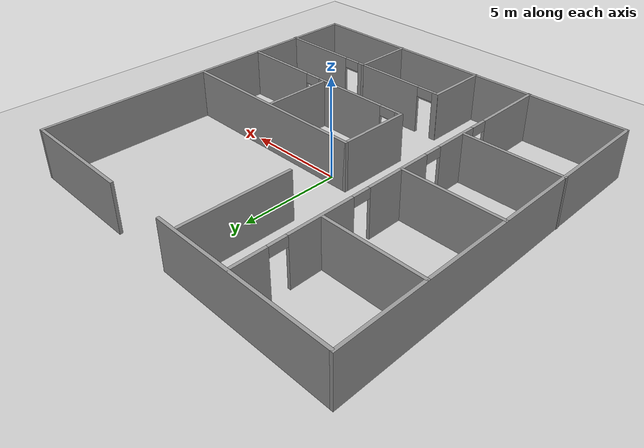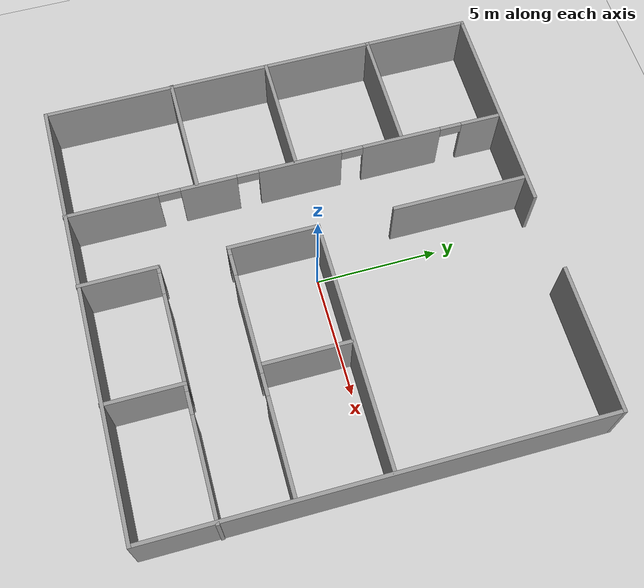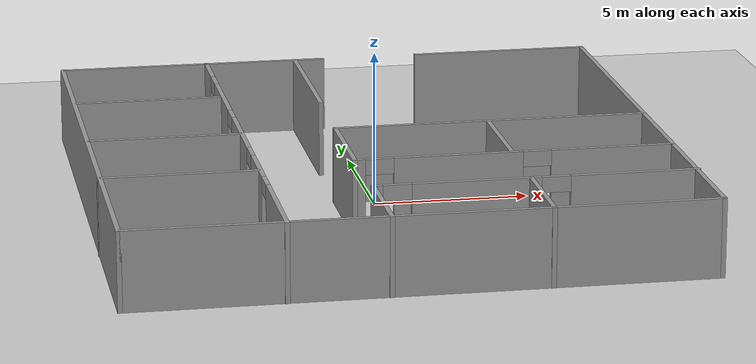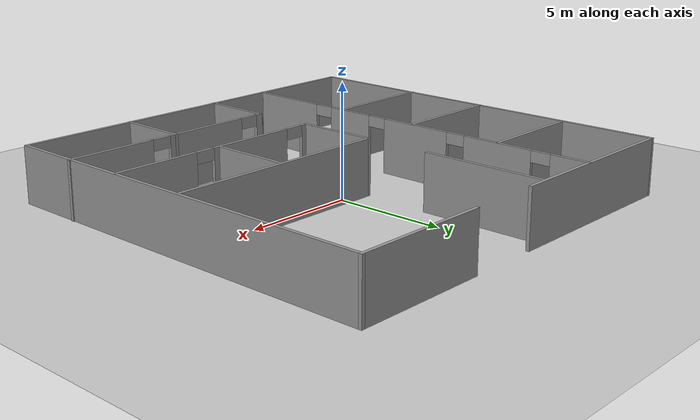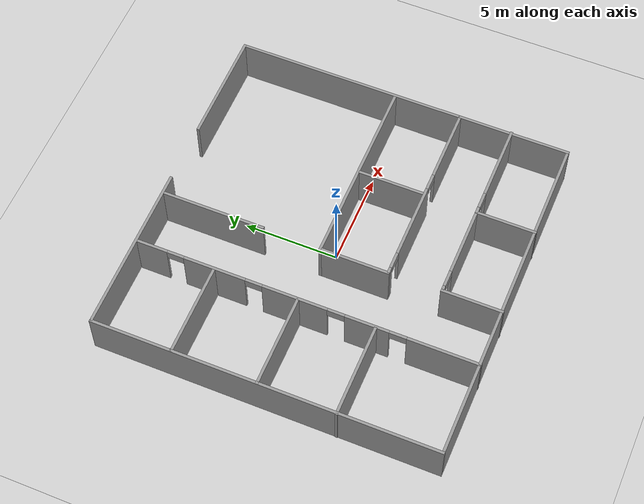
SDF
<sdf version="1.7">
 <world name="default">
  <light name="sun" type="directional">
   <pose>0 0 10 0 -0 0</pose>
   <diffuse>0.8 0.8 0.8 1</diffuse>
   <specular>0.2 0.2 0.2 1</specular>
   <attenuation>
    <range>1000</range>
    <constant>0.9</constant>
    <linear>0.01</linear>
    <quadratic>0.001</quadratic>
   </attenuation>
   <direction>-0.5 0.1 -0.9</direction>
   <spot><inner_angle>0</inner_angle><outer_angle>0</outer_angle><falloff>0</falloff></spot>
  </light>
  <model name="ground_plane">
   <static>1</static>
   <link name="link">
    <collision name="collision">
     <geometry><plane><normal>0 0 1</normal><size>100 100</size></plane></geometry>
     <surface>
      <contact><collide_bitmask>65535</collide_bitmask></contact>
      <friction><ode><mu>100</mu><mu2>50</mu2></ode></friction>
     </surface>
    </collision>
    <visual name="visual">
     <cast_shadows>0</cast_shadows>
     <geometry><plane><normal>0 0 1</normal><size>100 100</size></plane></geometry>
     <material>
      <script><uri>file://media/materials/scripts/gazebo.material</uri><name>Gazebo/Grey</name></script>
     </material>
    </visual>
   </link>
  </model>
  <gravity>0 0 -9.8</gravity>
  <magnetic_field>6e-06 2.3e-05 -4.2e-05</magnetic_field>
  <atmosphere type="adiabatic"/>
  <physics type="ode">
   <max_step_size>0.001</max_step_size>
   <real_time_factor>1</real_time_factor>
   <real_time_update_rate>1000</real_time_update_rate>
  </physics>
  <scene><ambient>0.4 0.4 0.4 1</ambient><background>0.7 0.7 0.7 1</background><shadows>1</shadows></scene>
  <spherical_coordinates>
   <surface_model>EARTH_WGS84</surface_model>
   <latitude_deg>0</latitude_deg>
   <longitude_deg>0</longitude_deg>
   <elevation>0</elevation>
   <heading_deg>0</heading_deg>
  </spherical_coordinates>
  <model name="Clinic_Plan">
   <pose>-0.0914 -0.080939 0 0 -0 0</pose>
   <link name="Wall_11">
    <pose>-4.13749 -0.011198 0 0 -0 -1.5708</pose>
    <visual name="Wall_11_Visual_0">
     <pose>-8.24062 0 1.25 0 -0 0</pose>
     <geometry><box><size>1.76876 0.15 2.5</size></box></geometry>
     <material>
      <script><uri>file://media/materials/scripts/gazebo.material</uri><name>Gazebo/Grey</name></script>
      <ambient>1 1 1 1</ambient>
     </material>
     <meta><layer>0</layer></meta>
    </visual>
    <collision name="Wall_11_Collision_0">
     <geometry><box><size>1.76876 0.15 2.5</size></box></geometry>
     <pose>-8.24062 0 1.25 0 -0 0</pose>
    </collision>
    <visual name="Wall_11_Visual_1">
     <pose>-4.80135 0 1.25 0 -0 0</pose>
     <geometry><box><size>3.30977 0.15 2.5</size></box></geometry>
     <material>
      <script><uri>file://media/materials/scripts/gazebo.material</uri><name>Gazebo/Grey</name></script>
      <ambient>1 1 1 1</ambient>
     </material>
     <meta><layer>0</layer></meta>
    </visual>
    <collision name="Wall_11_Collision_1">
     <geometry><box><size>3.30977 0.15 2.5</size></box></geometry>
     <pose>-4.80135 0 1.25 0 -0 0</pose>
    </collision>
    <visual name="Wall_11_Visual_2">
     <pose>-0.522188 0 1.25 0 -0 0</pose>
     <geometry><box><size>3.44855 0.15 2.5</size></box></geometry>
     <material>
      <script><uri>file://media/materials/scripts/gazebo.material</uri><name>Gazebo/Grey</name></script>
      <ambient>1 1 1 1</ambient>
     </material>
     <meta><layer>0</layer></meta>
    </visual>
    <collision name="Wall_11_Collision_2">
     <geometry><box><size>3.44855 0.15 2.5</size></box></geometry>
     <pose>-0.522188 0 1.25 0 -0 0</pose>
    </collision>
    <visual name="Wall_11_Visual_3">
     <pose>3.25967 0 1.25 0 -0 0</pose>
     <geometry><box><size>2.31515 0.15 2.5</size></box></geometry>
     <material>
      <script><uri>file://media/materials/scripts/gazebo.material</uri><name>Gazebo/Grey</name></script>
      <ambient>1 1 1 1</ambient>
     </material>
     <meta><layer>0</layer></meta>
    </visual>
    <collision name="Wall_11_Collision_3">
     <geometry><box><size>2.31515 0.15 2.5</size></box></geometry>
     <pose>3.25967 0 1.25 0 -0 0</pose>
    </collision>
    <visual name="Wall_11_Visual_4">
     <pose>7.22112 0 1.25 0 -0 0</pose>
     <geometry><box><size>3.80776 0.15 2.5</size></box></geometry>
     <material>
      <script><uri>file://media/materials/scripts/gazebo.material</uri><name>Gazebo/Grey</name></script>
      <ambient>1 1 1 1</ambient>
     </material>
     <meta><layer>0</layer></meta>
    </visual>
    <collision name="Wall_11_Collision_4">
     <geometry><box><size>3.80776 0.15 2.5</size></box></geometry>
     <pose>7.22112 0 1.25 0 -0 0</pose>
    </collision>
    <visual name="Wall_11_Visual_5">
     <pose>-6.90624 0 2.25 0 -0 0</pose>
     <geometry><box><size>0.9 0.15 0.5</size></box></geometry>
     <material>
      <script><uri>file://media/materials/scripts/gazebo.material</uri><name>Gazebo/Grey</name></script>
      <ambient>1 1 1 1</ambient>
     </material>
     <meta><layer>0</layer></meta>
    </visual>
    <collision name="Wall_11_Collision_5">
     <geometry><box><size>0.9 0.15 0.5</size></box></geometry>
     <pose>-6.90624 0 2.25 0 -0 0</pose>
    </collision>
    <visual name="Wall_11_Visual_6">
     <pose>-2.69646 0 2.25 0 -0 0</pose>
     <geometry><box><size>0.9 0.15 0.5</size></box></geometry>
     <material>
      <script><uri>file://media/materials/scripts/gazebo.material</uri><name>Gazebo/Grey</name></script>
      <ambient>1 1 1 1</ambient>
     </material>
     <meta><layer>0</layer></meta>
    </visual>
    <collision name="Wall_11_Collision_6">
     <geometry><box><size>0.9 0.15 0.5</size></box></geometry>
     <pose>-2.69646 0 2.25 0 -0 0</pose>
    </collision>
    <visual name="Wall_11_Visual_7">
     <pose>1.65209 0 2.25 0 -0 0</pose>
     <geometry><box><size>0.9 0.15 0.5</size></box></geometry>
     <material>
      <script><uri>file://media/materials/scripts/gazebo.material</uri><name>Gazebo/Grey</name></script>
      <ambient>1 1 1 1</ambient>
     </material>
     <meta><layer>0</layer></meta>
    </visual>
    <collision name="Wall_11_Collision_7">
     <geometry><box><size>0.9 0.15 0.5</size></box></geometry>
     <pose>1.65209 0 2.25 0 -0 0</pose>
    </collision>
    <visual name="Wall_11_Visual_8">
     <pose>4.86724 0 2.25 0 -0 0</pose>
     <geometry><box><size>0.9 0.15 0.5</size></box></geometry>
     <material>
      <script><uri>file://media/materials/scripts/gazebo.material</uri><name>Gazebo/Grey</name></script>
      <ambient>1 1 1 1</ambient>
     </material>
     <meta><layer>0</layer></meta>
    </visual>
    <collision name="Wall_11_Collision_8">
     <geometry><box><size>0.9 0.15 0.5</size></box></geometry>
     <pose>4.86724 0 2.25 0 -0 0</pose>
    </collision>
   </link>
   <link name="Wall_15">
    <collision name="Wall_15_Collision">
     <geometry><box><size>5 0.15 2.5</size></box></geometry>
     <pose>0 0 1.25 0 -0 0</pose>
    </collision>
    <visual name="Wall_15_Visual">
     <pose>0 0 1.25 0 -0 0</pose>
     <geometry><box><size>5 0.15 2.5</size></box></geometry>
     <material>
      <script><uri>file://media/materials/scripts/gazebo.material</uri><name>Gazebo/Grey</name></script>
      <ambient>1 1 1 1</ambient>
     </material>
     <meta><layer>0</layer></meta>
    </visual>
    <pose>-6.62954 4.79703 0 0 -0 0</pose>
   </link>
   <link name="Wall_17">
    <collision name="Wall_17_Collision">
     <geometry><box><size>5 0.15 2.5</size></box></geometry>
     <pose>0 0 1.25 0 -0 0</pose>
    </collision>
    <visual name="Wall_17_Visual">
     <pose>0 0 1.25 0 -0 0</pose>
     <geometry><box><size>5 0.15 2.5</size></box></geometry>
     <material>
      <script><uri>file://media/materials/scripts/gazebo.material</uri><name>Gazebo/Grey</name></script>
      <ambient>1 1 1 1</ambient>
     </material>
     <meta><layer>0</layer></meta>
    </visual>
    <pose>-6.62954 0.330853 0 0 -0 0</pose>
   </link>
   <link name="Wall_19">
    <collision name="Wall_19_Collision">
     <geometry><box><size>5 0.15 2.5</size></box></geometry>
     <pose>0 0 1.25 0 -0 0</pose>
    </collision>
    <visual name="Wall_19_Visual">
     <pose>0 0 1.25 0 -0 0</pose>
     <geometry><box><size>5 0.15 2.5</size></box></geometry>
     <material>
      <script><uri>file://media/materials/scripts/gazebo.material</uri><name>Gazebo/Grey</name></script>
      <ambient>1 1 1 1</ambient>
     </material>
     <meta><layer>0</layer></meta>
    </visual>
    <pose>-6.66013 -3.73765 0 0 -0 0</pose>
   </link>
   <link name="Wall_22">
    <collision name="Wall_22_Collision">
     <geometry><box><size>3.25 0.15 2.5</size></box></geometry>
     <pose>0 0 1.25 0 -0 0</pose>
    </collision>
    <visual name="Wall_22_Visual">
     <pose>0 0 1.25 0 -0 0</pose>
     <geometry><box><size>3.25 0.15 2.5</size></box></geometry>
     <material>
      <script><uri>file://media/materials/scripts/gazebo.material</uri><name>Gazebo/Grey</name></script>
      <ambient>1 1 1 1</ambient>
     </material>
     <meta><layer>0</layer></meta>
    </visual>
    <pose>-1.0264 -7.51474 0 0 -0 1.5708</pose>
   </link>
   <link name="Wall_3">
    <collision name="Wall_3_Collision">
     <geometry><box><size>18.25 0.15 2.5</size></box></geometry>
     <pose>0 0 1.25 0 -0 0</pose>
    </collision>
    <visual name="Wall_3_Visual">
     <pose>0 0 1.25 0 -0 0</pose>
     <geometry><box><size>18.25 0.15 2.5</size></box></geometry>
     <material>
      <script><uri>file://media/materials/scripts/gazebo.material</uri><name>Gazebo/Grey</name></script>
      <ambient>1 1 1 1</ambient>
     </material>
     <meta><layer>0</layer></meta>
    </visual>
    <pose>-9.0597 0.014737 0 0 -0 -1.5708</pose>
   </link>
   <link name="Wall_32">
    <pose>4.03513 -5.96146 0 0 -0 0</pose>
    <visual name="Wall_32_Visual_0">
     <pose>-4.9534 0 1.25 0 -0 0</pose>
     <geometry><box><size>0.343205 0.15 2.5</size></box></geometry>
     <material>
      <script><uri>file://media/materials/scripts/gazebo.material</uri><name>Gazebo/Grey</name></script>
      <ambient>1 1 1 1</ambient>
     </material>
     <meta><layer>0</layer></meta>
    </visual>
    <collision name="Wall_32_Collision_0">
     <geometry><box><size>0.343205 0.15 2.5</size></box></geometry>
     <pose>-4.9534 0 1.25 0 -0 0</pose>
    </collision>
    <visual name="Wall_32_Visual_1">
     <pose>-1.87128 0 1.25 0 -0 0</pose>
     <geometry><box><size>4.02104 0.15 2.5</size></box></geometry>
     <material>
      <script><uri>file://media/materials/scripts/gazebo.material</uri><name>Gazebo/Grey</name></script>
      <ambient>1 1 1 1</ambient>
     </material>
     <meta><layer>0</layer></meta>
    </visual>
    <collision name="Wall_32_Collision_1">
     <geometry><box><size>4.02104 0.15 2.5</size></box></geometry>
     <pose>-1.87128 0 1.25 0 -0 0</pose>
    </collision>
    <visual name="Wall_32_Visual_2">
     <pose>3.08212 0 1.25 0 -0 0</pose>
     <geometry><box><size>4.08576 0.15 2.5</size></box></geometry>
     <material>
      <script><uri>file://media/materials/scripts/gazebo.material</uri><name>Gazebo/Grey</name></script>
      <ambient>1 1 1 1</ambient>
     </material>
     <meta><layer>0</layer></meta>
    </visual>
    <collision name="Wall_32_Collision_2">
     <geometry><box><size>4.08576 0.15 2.5</size></box></geometry>
     <pose>3.08212 0 1.25 0 -0 0</pose>
    </collision>
    <visual name="Wall_32_Visual_3">
     <pose>-4.33179 0 2.25 0 -0 0</pose>
     <geometry><box><size>0.9 0.15 0.5</size></box></geometry>
     <material>
      <script><uri>file://media/materials/scripts/gazebo.material</uri><name>Gazebo/Grey</name></script>
      <ambient>1 1 1 1</ambient>
     </material>
     <meta><layer>0</layer></meta>
    </visual>
    <collision name="Wall_32_Collision_3">
     <geometry><box><size>0.9 0.15 0.5</size></box></geometry>
     <pose>-4.33179 0 2.25 0 -0 0</pose>
    </collision>
    <visual name="Wall_32_Visual_4">
     <pose>0.589242 0 2.25 0 -0 0</pose>
     <geometry><box><size>0.9 0.15 0.5</size></box></geometry>
     <material>
      <script><uri>file://media/materials/scripts/gazebo.material</uri><name>Gazebo/Grey</name></script>
      <ambient>1 1 1 1</ambient>
     </material>
     <meta><layer>0</layer></meta>
    </visual>
    <collision name="Wall_32_Collision_4">
     <geometry><box><size>0.9 0.15 0.5</size></box></geometry>
     <pose>0.589242 0 2.25 0 -0 0</pose>
    </collision>
   </link>
   <link name="Wall_34">
    <pose>3.93681 -3.16844 0 0 -0 3.14159</pose>
    <visual name="Wall_34_Visual_0">
     <pose>-3.15181 0 1.25 0 -0 0</pose>
     <geometry><box><size>3.94638 0.15 2.5</size></box></geometry>
     <material>
      <script><uri>file://media/materials/scripts/gazebo.material</uri><name>Gazebo/Grey</name></script>
      <ambient>1 1 1 1</ambient>
     </material>
     <meta><layer>0</layer></meta>
    </visual>
    <collision name="Wall_34_Collision_0">
     <geometry><box><size>3.94638 0.15 2.5</size></box></geometry>
     <pose>-3.15181 0 1.25 0 -0 0</pose>
    </collision>
    <visual name="Wall_34_Visual_1">
     <pose>1.77322 0 1.25 0 -0 0</pose>
     <geometry><box><size>4.10368 0.15 2.5</size></box></geometry>
     <material>
      <script><uri>file://media/materials/scripts/gazebo.material</uri><name>Gazebo/Grey</name></script>
      <ambient>1 1 1 1</ambient>
     </material>
     <meta><layer>0</layer></meta>
    </visual>
    <collision name="Wall_34_Collision_1">
     <geometry><box><size>4.10368 0.15 2.5</size></box></geometry>
     <pose>1.77322 0 1.25 0 -0 0</pose>
    </collision>
    <visual name="Wall_34_Visual_2">
     <pose>4.92503 0 1.25 0 -0 0</pose>
     <geometry><box><size>0.399938 0.15 2.5</size></box></geometry>
     <material>
      <script><uri>file://media/materials/scripts/gazebo.material</uri><name>Gazebo/Grey</name></script>
      <ambient>1 1 1 1</ambient>
     </material>
     <meta><layer>0</layer></meta>
    </visual>
    <collision name="Wall_34_Collision_2">
     <geometry><box><size>0.399938 0.15 2.5</size></box></geometry>
     <pose>4.92503 0 1.25 0 -0 0</pose>
    </collision>
    <visual name="Wall_34_Visual_3">
     <pose>-0.728617 0 2.25 0 -0 0</pose>
     <geometry><box><size>0.9 0.15 0.5</size></box></geometry>
     <material>
      <script><uri>file://media/materials/scripts/gazebo.material</uri><name>Gazebo/Grey</name></script>
      <ambient>1 1 1 1</ambient>
     </material>
     <meta><layer>0</layer></meta>
    </visual>
    <collision name="Wall_34_Collision_3">
     <geometry><box><size>0.9 0.15 0.5</size></box></geometry>
     <pose>-0.728617 0 2.25 0 -0 0</pose>
    </collision>
    <visual name="Wall_34_Visual_4">
     <pose>4.27506 0 2.25 0 -0 0</pose>
     <geometry><box><size>0.9 0.15 0.5</size></box></geometry>
     <material>
      <script><uri>file://media/materials/scripts/gazebo.material</uri><name>Gazebo/Grey</name></script>
      <ambient>1 1 1 1</ambient>
     </material>
     <meta><layer>0</layer></meta>
    </visual>
    <collision name="Wall_34_Collision_4">
     <geometry><box><size>0.9 0.15 0.5</size></box></geometry>
     <pose>4.27506 0 2.25 0 -0 0</pose>
    </collision>
   </link>
   <link name="Wall_36">
    <collision name="Wall_36_Collision">
     <geometry><box><size>3.25 0.15 2.5</size></box></geometry>
     <pose>0 0 1.25 0 -0 0</pose>
    </collision>
    <visual name="Wall_36_Visual">
     <pose>0 0 1.25 0 -0 0</pose>
     <geometry><box><size>3.25 0.15 2.5</size></box></geometry>
     <material>
      <script><uri>file://media/materials/scripts/gazebo.material</uri><name>Gazebo/Grey</name></script>
      <ambient>1 1 1 1</ambient>
     </material>
     <meta><layer>0</layer></meta>
    </visual>
    <pose>3.84891 -7.50761 0 0 -0 -1.5708</pose>
   </link>
   <link name="Wall_38">
    <collision name="Wall_38_Collision">
     <geometry><box><size>10.25 0.15 2.5</size></box></geometry>
     <pose>0 0 1.25 0 -0 0</pose>
    </collision>
    <visual name="Wall_38_Visual">
     <pose>0 0 1.25 0 -0 0</pose>
     <geometry><box><size>10.25 0.15 2.5</size></box></geometry>
     <material>
      <script><uri>file://media/materials/scripts/gazebo.material</uri><name>Gazebo/Grey</name></script>
      <ambient>1 1 1 1</ambient>
     </material>
     <meta><layer>0</layer></meta>
    </visual>
    <pose>3.93681 0.431559 0 0 -0 0</pose>
   </link>
   <link name="Wall_40">
    <collision name="Wall_40_Collision">
     <geometry><box><size>3.5 0.15 2.5</size></box></geometry>
     <pose>0 0 1.25 0 -0 0</pose>
    </collision>
    <visual name="Wall_40_Visual">
     <pose>0 0 1.25 0 -0 0</pose>
     <geometry><box><size>3.5 0.15 2.5</size></box></geometry>
     <material>
      <script><uri>file://media/materials/scripts/gazebo.material</uri><name>Gazebo/Grey</name></script>
      <ambient>1 1 1 1</ambient>
     </material>
     <meta><layer>0</layer></meta>
    </visual>
    <pose>3.87146 -1.3505 0 0 -0 1.5708</pose>
   </link>
   <link name="Wall_43">
    <collision name="Wall_43_Collision">
     <geometry><box><size>3.75 0.15 2.5</size></box></geometry>
     <pose>0 0 1.25 0 -0 0</pose>
    </collision>
    <visual name="Wall_43_Visual">
     <pose>0 0 1.25 0 -0 0</pose>
     <geometry><box><size>3.75 0.15 2.5</size></box></geometry>
     <material>
      <script><uri>file://media/materials/scripts/gazebo.material</uri><name>Gazebo/Grey</name></script>
      <ambient>1 1 1 1</ambient>
     </material>
     <meta><layer>0</layer></meta>
    </visual>
    <pose>-1.11319 -1.36844 0 0 -0 -1.5708</pose>
   </link>
   <link name="Wall_46">
    <collision name="Wall_46_Collision">
     <geometry><box><size>5.5 0.15 2.5</size></box></geometry>
     <pose>0 0 1.25 0 -0 0</pose>
    </collision>
    <visual name="Wall_46_Visual">
     <pose>0 0 1.25 0 -0 0</pose>
     <geometry><box><size>5.5 0.15 2.5</size></box></geometry>
     <material>
      <script><uri>file://media/materials/scripts/gazebo.material</uri><name>Gazebo/Grey</name></script>
      <ambient>1 1 1 1</ambient>
     </material>
     <meta><layer>0</layer></meta>
    </visual>
    <pose>-1.07436 6.24221 0 0 -0 1.5708</pose>
   </link>
   <link name="Wall_48">
    <collision name="Wall_48_Collision">
     <geometry><box><size>6 0.15 2.5</size></box></geometry>
     <pose>0 0 1.25 0 -0 0</pose>
    </collision>
    <visual name="Wall_48_Visual">
     <pose>0 0 1.25 0 -0 0</pose>
     <geometry><box><size>6 0.15 2.5</size></box></geometry>
     <material>
      <script><uri>file://media/materials/scripts/gazebo.material</uri><name>Gazebo/Grey</name></script>
      <ambient>1 1 1 1</ambient>
     </material>
     <meta><layer>0</layer></meta>
    </visual>
    <pose>6.1153 9.06474 0 0 -0 3.14159</pose>
   </link>
   <link name="Wall_5">
    <collision name="Wall_5_Collision">
     <geometry><box><size>18.25 0.15 2.5</size></box></geometry>
     <pose>0 0 1.25 0 -0 0</pose>
    </collision>
    <visual name="Wall_5_Visual">
     <pose>0 0 1.25 0 -0 0</pose>
     <geometry><box><size>18.25 0.15 2.5</size></box></geometry>
     <material>
      <script><uri>file://media/materials/scripts/gazebo.material</uri><name>Gazebo/Grey</name></script>
      <ambient>1 1 1 1</ambient>
     </material>
     <meta><layer>0</layer></meta>
    </visual>
    <pose>-0.0097 -9.03526 0 0 -0 0</pose>
   </link>
   <link name="Wall_50">
    <collision name="Wall_50_Collision">
     <geometry><box><size>9 0.15 2.5</size></box></geometry>
     <pose>0 0 1.25 0 -0 0</pose>
    </collision>
    <visual name="Wall_50_Visual">
     <pose>0 0 1.25 0 -0 0</pose>
     <geometry><box><size>9 0.15 2.5</size></box></geometry>
     <material>
      <script><uri>file://media/materials/scripts/gazebo.material</uri><name>Gazebo/Grey</name></script>
      <ambient>1 1 1 1</ambient>
     </material>
     <meta><layer>0</layer></meta>
    </visual>
    <pose>-4.56024 9.06375 0 0 -0 3.14159</pose>
   </link>
   <link name="Wall_6">
    <collision name="Wall_6_Collision">
     <geometry><box><size>18.25 0.15 2.5</size></box></geometry>
     <pose>0 0 1.25 0 -0 0</pose>
    </collision>
    <visual name="Wall_6_Visual">
     <pose>0 0 1.25 0 -0 0</pose>
     <geometry><box><size>18.25 0.15 2.5</size></box></geometry>
     <material>
      <script><uri>file://media/materials/scripts/gazebo.material</uri><name>Gazebo/Grey</name></script>
      <ambient>1 1 1 1</ambient>
     </material>
     <meta><layer>0</layer></meta>
    </visual>
    <pose>9.0403 0.014737 0 0 -0 1.5708</pose>
   </link>
   <static>1</static>
  </model>
 </world>
</sdf>
